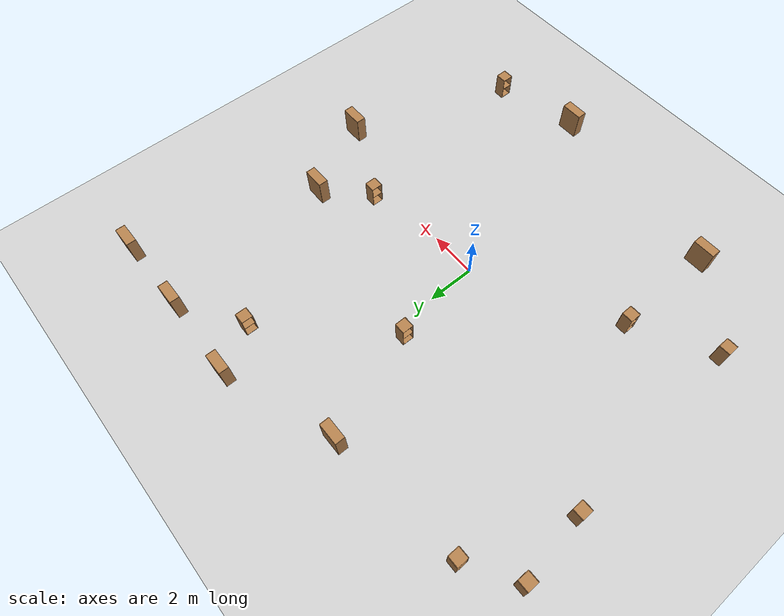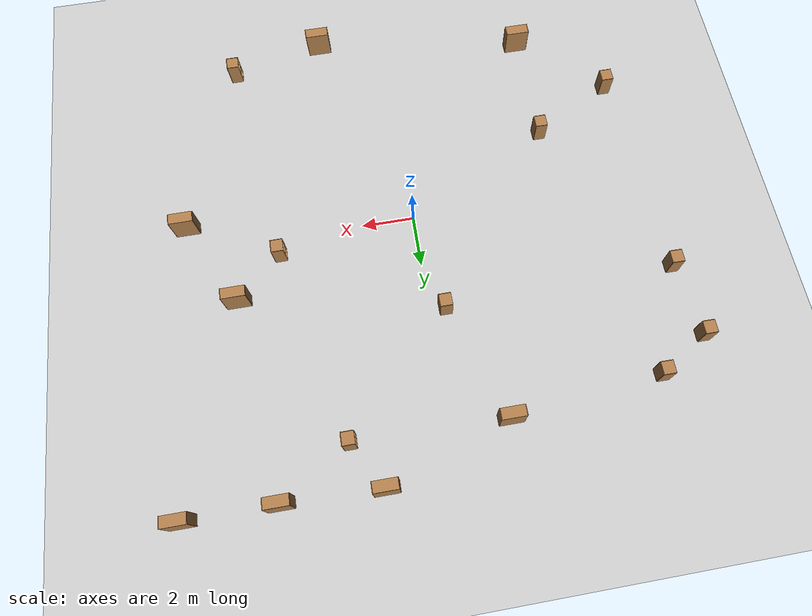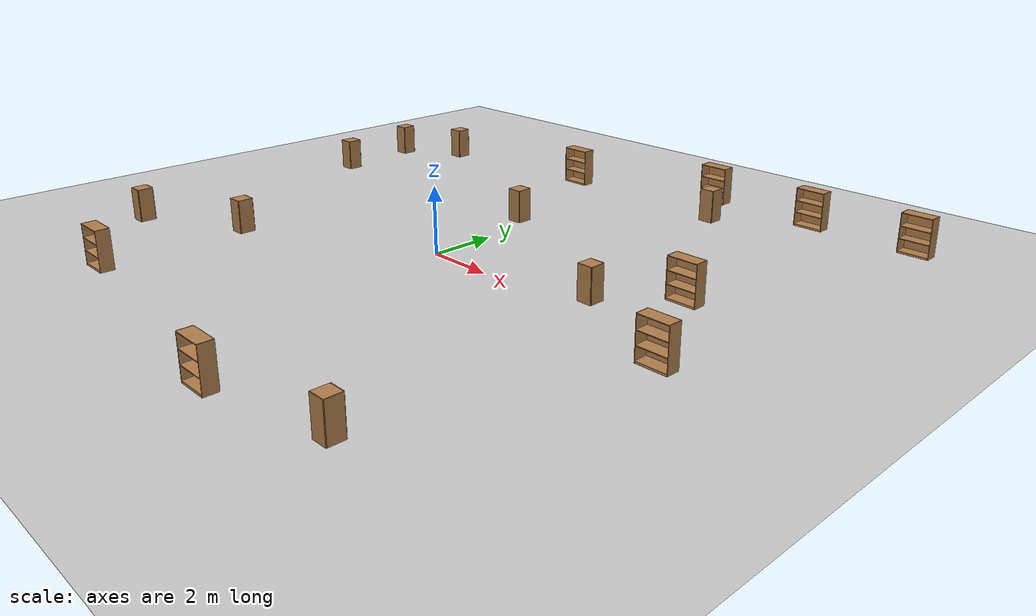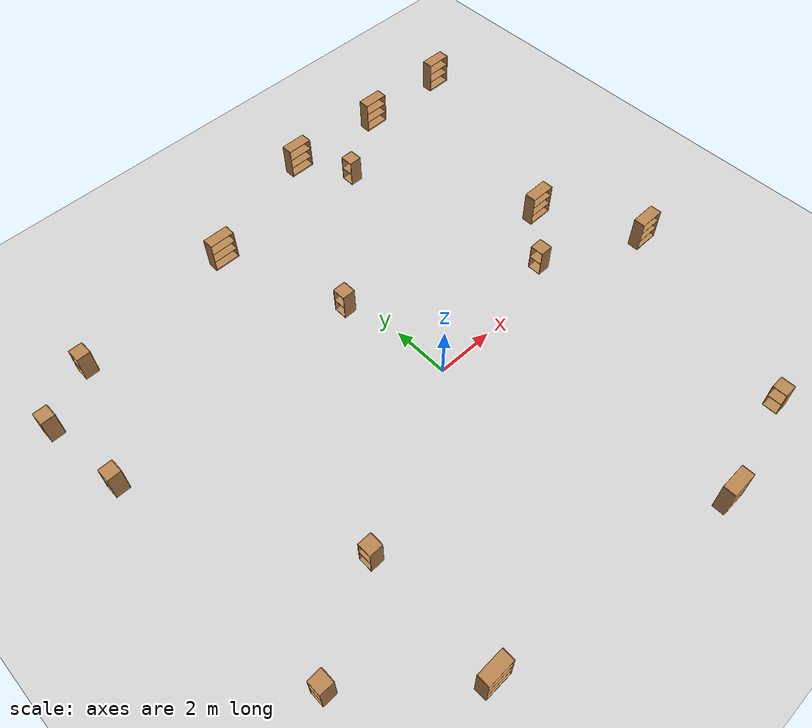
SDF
<sdf version="1.6">
 <world name="default">
  <light name="sun" type="directional">
   <pose>0 0 10 0 -0 0</pose>
   <diffuse>0.8 0.8 0.8 1</diffuse>
   <specular>0.2 0.2 0.2 1</specular>
   <attenuation>
    <range>1000</range>
    <constant>0.9</constant>
    <linear>0.01</linear>
    <quadratic>0.001</quadratic>
   </attenuation>
   <direction>-0.5 0.1 -0.9</direction>
  </light>
  <model name="ground_plane">
   <static>1</static>
   <link name="link">
    <collision name="collision">
     <geometry><plane><normal>0 0 1</normal><size>100 100</size></plane></geometry>
     <surface><friction><ode><mu>100</mu><mu2>50</mu2></ode></friction></surface>
    </collision>
    <visual name="visual">
     <cast_shadows>0</cast_shadows>
     <geometry><plane><normal>0 0 1</normal><size>100 100</size></plane></geometry>
     <material>
      <script><uri>file://media/materials/scripts/gazebo.material</uri><name>Gazebo/Grey</name></script>
     </material>
    </visual>
   </link>
  </model>
  <gravity>0 0 -9.8</gravity>
  <magnetic_field>6e-06 2.3e-05 -4.2e-05</magnetic_field>
  <atmosphere type="adiabatic"/>
  <physics name="default_physics" default="0" type="ode">
   <max_step_size>0.001</max_step_size>
   <real_time_factor>1</real_time_factor>
   <real_time_update_rate>1000</real_time_update_rate>
  </physics>
  <scene><ambient>0.4 0.4 0.4 1</ambient><background>0.7 0.7 0.7 1</background><shadows>1</shadows></scene>
  <audio><device>default</device></audio>
  <spherical_coordinates>
   <surface_model>EARTH_WGS84</surface_model>
   <latitude_deg>0</latitude_deg>
   <longitude_deg>0</longitude_deg>
   <elevation>0</elevation>
   <heading_deg>0</heading_deg>
  </spherical_coordinates>
  <model name="cabinet">
   <static>1</static>
   <link name="cabinet_bottom_plate">
    <inertial>
     <pose>0 0 -1 0 -0 0</pose>
     <inertia><ixx>2.05</ixx><ixy>0</ixy><ixz>0</ixz><iyy>2.05</iyy><iyz>0</iyz><izz>2.05</izz></inertia>
     <mass>25</mass>
    </inertial>
    <collision name="cabinet_bottom_plate_geom">
     <pose>0 0 0.01 0 -0 0</pose>
     <geometry><box><size>0.45 0.45 0.02</size></box></geometry>
    </collision>
    <visual name="cabinet_bottom_plate_geom_visual">
     <pose>0 0 0.01 0 -0 0</pose>
     <geometry><box><size>0.45 0.45 0.02</size></box></geometry>
     <material>
      <script><uri>file://media/materials/scripts/gazebo.material</uri><name>Gazebo/Wood</name></script>
     </material>
    </visual>
    <collision name="cabinet_bottom_plate_geom_cabinet_back_plate">
     <pose>0.235 0 0.51 0 -0 0</pose>
     <geometry><box><size>0.02 0.45 1.02</size></box></geometry>
    </collision>
    <visual name="cabinet_bottom_plate_geom_cabinet_back_plate_visual">
     <pose>0.235 0 0.51 0 -0 0</pose>
     <geometry><box><size>0.02 0.45 1.02</size></box></geometry>
     <material>
      <script><uri>file://media/materials/scripts/gazebo.material</uri><name>Gazebo/Wood</name></script>
     </material>
    </visual>
    <collision name="cabinet_bottom_plate_geom_cabinet_left_plate">
     <pose>0 0.235 0.51 0 -0 0</pose>
     <geometry><box><size>0.45 0.02 1.02</size></box></geometry>
    </collision>
    <visual name="cabinet_bottom_plate_geom_cabinet_left_plate_visual">
     <pose>0 0.235 0.51 0 -0 0</pose>
     <geometry><box><size>0.45 0.02 1.02</size></box></geometry>
     <material>
      <script><uri>file://media/materials/scripts/gazebo.material</uri><name>Gazebo/Wood</name></script>
     </material>
    </visual>
    <collision name="cabinet_bottom_plate_geom_cabinet_middle_plate">
     <pose>0 0 0.51 0 -0 0</pose>
     <geometry><box><size>0.45 0.45 0.02</size></box></geometry>
    </collision>
    <visual name="cabinet_bottom_plate_geom_cabinet_middle_plate_visual">
     <pose>0 0 0.51 0 -0 0</pose>
     <geometry><box><size>0.45 0.45 0.02</size></box></geometry>
     <material>
      <script><uri>file://media/materials/scripts/gazebo.material</uri><name>Gazebo/Wood</name></script>
     </material>
    </visual>
    <collision name="cabinet_bottom_plate_geom_cabinet_right_plate">
     <pose>0 -0.235 0.51 0 -0 0</pose>
     <geometry><box><size>0.45 0.02 1.02</size></box></geometry>
    </collision>
    <visual name="cabinet_bottom_plate_geom_cabinet_right_plate_visual">
     <pose>0 -0.235 0.51 0 -0 0</pose>
     <geometry><box><size>0.45 0.02 1.02</size></box></geometry>
     <material>
      <script><uri>file://media/materials/scripts/gazebo.material</uri><name>Gazebo/Wood</name></script>
     </material>
    </visual>
    <collision name="cabinet_bottom_plate_geom_cabinet_top_plate">
     <pose>0 0 1.01 0 -0 0</pose>
     <geometry><box><size>0.45 0.45 0.02</size></box></geometry>
    </collision>
    <visual name="cabinet_bottom_plate_geom_cabinet_top_plate_visual">
     <pose>0 0 1.01 0 -0 0</pose>
     <geometry><box><size>0.45 0.45 0.02</size></box></geometry>
     <material>
      <script><uri>file://media/materials/scripts/gazebo.material</uri><name>Gazebo/Wood</name></script>
     </material>
    </visual>
   </link>
   <pose>-7.78312 7.62093 0 0 -0 0</pose>
  </model>
  <model name="cabinet_0">
   <static>1</static>
   <link name="cabinet_bottom_plate">
    <inertial>
     <pose>0 0 -1 0 -0 0</pose>
     <inertia><ixx>2.05</ixx><ixy>0</ixy><ixz>0</ixz><iyy>2.05</iyy><iyz>0</iyz><izz>2.05</izz></inertia>
     <mass>25</mass>
    </inertial>
    <collision name="cabinet_bottom_plate_geom">
     <pose>0 0 0.01 0 -0 0</pose>
     <geometry><box><size>0.45 0.45 0.02</size></box></geometry>
    </collision>
    <visual name="cabinet_bottom_plate_geom_visual">
     <pose>0 0 0.01 0 -0 0</pose>
     <geometry><box><size>0.45 0.45 0.02</size></box></geometry>
     <material>
      <script><uri>file://media/materials/scripts/gazebo.material</uri><name>Gazebo/Wood</name></script>
     </material>
    </visual>
    <collision name="cabinet_bottom_plate_geom_cabinet_back_plate">
     <pose>0.235 0 0.51 0 -0 0</pose>
     <geometry><box><size>0.02 0.45 1.02</size></box></geometry>
    </collision>
    <visual name="cabinet_bottom_plate_geom_cabinet_back_plate_visual">
     <pose>0.235 0 0.51 0 -0 0</pose>
     <geometry><box><size>0.02 0.45 1.02</size></box></geometry>
     <material>
      <script><uri>file://media/materials/scripts/gazebo.material</uri><name>Gazebo/Wood</name></script>
     </material>
    </visual>
    <collision name="cabinet_bottom_plate_geom_cabinet_left_plate">
     <pose>0 0.235 0.51 0 -0 0</pose>
     <geometry><box><size>0.45 0.02 1.02</size></box></geometry>
    </collision>
    <visual name="cabinet_bottom_plate_geom_cabinet_left_plate_visual">
     <pose>0 0.235 0.51 0 -0 0</pose>
     <geometry><box><size>0.45 0.02 1.02</size></box></geometry>
     <material>
      <script><uri>file://media/materials/scripts/gazebo.material</uri><name>Gazebo/Wood</name></script>
     </material>
    </visual>
    <collision name="cabinet_bottom_plate_geom_cabinet_middle_plate">
     <pose>0 0 0.51 0 -0 0</pose>
     <geometry><box><size>0.45 0.45 0.02</size></box></geometry>
    </collision>
    <visual name="cabinet_bottom_plate_geom_cabinet_middle_plate_visual">
     <pose>0 0 0.51 0 -0 0</pose>
     <geometry><box><size>0.45 0.45 0.02</size></box></geometry>
     <material>
      <script><uri>file://media/materials/scripts/gazebo.material</uri><name>Gazebo/Wood</name></script>
     </material>
    </visual>
    <collision name="cabinet_bottom_plate_geom_cabinet_right_plate">
     <pose>0 -0.235 0.51 0 -0 0</pose>
     <geometry><box><size>0.45 0.02 1.02</size></box></geometry>
    </collision>
    <visual name="cabinet_bottom_plate_geom_cabinet_right_plate_visual">
     <pose>0 -0.235 0.51 0 -0 0</pose>
     <geometry><box><size>0.45 0.02 1.02</size></box></geometry>
     <material>
      <script><uri>file://media/materials/scripts/gazebo.material</uri><name>Gazebo/Wood</name></script>
     </material>
    </visual>
    <collision name="cabinet_bottom_plate_geom_cabinet_top_plate">
     <pose>0 0 1.01 0 -0 0</pose>
     <geometry><box><size>0.45 0.45 0.02</size></box></geometry>
    </collision>
    <visual name="cabinet_bottom_plate_geom_cabinet_top_plate_visual">
     <pose>0 0 1.01 0 -0 0</pose>
     <geometry><box><size>0.45 0.45 0.02</size></box></geometry>
     <material>
      <script><uri>file://media/materials/scripts/gazebo.material</uri><name>Gazebo/Wood</name></script>
     </material>
    </visual>
   </link>
   <pose>-0.585498 3.84273 0 0 -0 0</pose>
  </model>
  <model name="cabinet_1">
   <static>1</static>
   <link name="cabinet_bottom_plate">
    <inertial>
     <pose>0 0 -1 0 -0 0</pose>
     <inertia><ixx>2.05</ixx><ixy>0</ixy><ixz>0</ixz><iyy>2.05</iyy><iyz>0</iyz><izz>2.05</izz></inertia>
     <mass>25</mass>
    </inertial>
    <collision name="cabinet_bottom_plate_geom">
     <pose>0 0 0.01 0 -0 0</pose>
     <geometry><box><size>0.45 0.45 0.02</size></box></geometry>
    </collision>
    <visual name="cabinet_bottom_plate_geom_visual">
     <pose>0 0 0.01 0 -0 0</pose>
     <geometry><box><size>0.45 0.45 0.02</size></box></geometry>
     <material>
      <script><uri>file://media/materials/scripts/gazebo.material</uri><name>Gazebo/Wood</name></script>
     </material>
    </visual>
    <collision name="cabinet_bottom_plate_geom_cabinet_back_plate">
     <pose>0.235 0 0.51 0 -0 0</pose>
     <geometry><box><size>0.02 0.45 1.02</size></box></geometry>
    </collision>
    <visual name="cabinet_bottom_plate_geom_cabinet_back_plate_visual">
     <pose>0.235 0 0.51 0 -0 0</pose>
     <geometry><box><size>0.02 0.45 1.02</size></box></geometry>
     <material>
      <script><uri>file://media/materials/scripts/gazebo.material</uri><name>Gazebo/Wood</name></script>
     </material>
    </visual>
    <collision name="cabinet_bottom_plate_geom_cabinet_left_plate">
     <pose>0 0.235 0.51 0 -0 0</pose>
     <geometry><box><size>0.45 0.02 1.02</size></box></geometry>
    </collision>
    <visual name="cabinet_bottom_plate_geom_cabinet_left_plate_visual">
     <pose>0 0.235 0.51 0 -0 0</pose>
     <geometry><box><size>0.45 0.02 1.02</size></box></geometry>
     <material>
      <script><uri>file://media/materials/scripts/gazebo.material</uri><name>Gazebo/Wood</name></script>
     </material>
    </visual>
    <collision name="cabinet_bottom_plate_geom_cabinet_middle_plate">
     <pose>0 0 0.51 0 -0 0</pose>
     <geometry><box><size>0.45 0.45 0.02</size></box></geometry>
    </collision>
    <visual name="cabinet_bottom_plate_geom_cabinet_middle_plate_visual">
     <pose>0 0 0.51 0 -0 0</pose>
     <geometry><box><size>0.45 0.45 0.02</size></box></geometry>
     <material>
      <script><uri>file://media/materials/scripts/gazebo.material</uri><name>Gazebo/Wood</name></script>
     </material>
    </visual>
    <collision name="cabinet_bottom_plate_geom_cabinet_right_plate">
     <pose>0 -0.235 0.51 0 -0 0</pose>
     <geometry><box><size>0.45 0.02 1.02</size></box></geometry>
    </collision>
    <visual name="cabinet_bottom_plate_geom_cabinet_right_plate_visual">
     <pose>0 -0.235 0.51 0 -0 0</pose>
     <geometry><box><size>0.45 0.02 1.02</size></box></geometry>
     <material>
      <script><uri>file://media/materials/scripts/gazebo.material</uri><name>Gazebo/Wood</name></script>
     </material>
    </visual>
    <collision name="cabinet_bottom_plate_geom_cabinet_top_plate">
     <pose>0 0 1.01 0 -0 0</pose>
     <geometry><box><size>0.45 0.45 0.02</size></box></geometry>
    </collision>
    <visual name="cabinet_bottom_plate_geom_cabinet_top_plate_visual">
     <pose>0 0 1.01 0 -0 0</pose>
     <geometry><box><size>0.45 0.45 0.02</size></box></geometry>
     <material>
      <script><uri>file://media/materials/scripts/gazebo.material</uri><name>Gazebo/Wood</name></script>
     </material>
    </visual>
   </link>
   <pose>-5.61767 -2.8837 0 0 -0 0</pose>
  </model>
  <model name="cabinet_2">
   <static>1</static>
   <link name="cabinet_bottom_plate">
    <inertial>
     <pose>0 0 -1 0 -0 0</pose>
     <inertia><ixx>2.05</ixx><ixy>0</ixy><ixz>0</ixz><iyy>2.05</iyy><iyz>0</iyz><izz>2.05</izz></inertia>
     <mass>25</mass>
    </inertial>
    <collision name="cabinet_bottom_plate_geom">
     <pose>0 0 0.01 0 -0 0</pose>
     <geometry><box><size>0.45 0.45 0.02</size></box></geometry>
    </collision>
    <visual name="cabinet_bottom_plate_geom_visual">
     <pose>0 0 0.01 0 -0 0</pose>
     <geometry><box><size>0.45 0.45 0.02</size></box></geometry>
     <material>
      <script><uri>file://media/materials/scripts/gazebo.material</uri><name>Gazebo/Wood</name></script>
     </material>
    </visual>
    <collision name="cabinet_bottom_plate_geom_cabinet_back_plate">
     <pose>0.235 0 0.51 0 -0 0</pose>
     <geometry><box><size>0.02 0.45 1.02</size></box></geometry>
    </collision>
    <visual name="cabinet_bottom_plate_geom_cabinet_back_plate_visual">
     <pose>0.235 0 0.51 0 -0 0</pose>
     <geometry><box><size>0.02 0.45 1.02</size></box></geometry>
     <material>
      <script><uri>file://media/materials/scripts/gazebo.material</uri><name>Gazebo/Wood</name></script>
     </material>
    </visual>
    <collision name="cabinet_bottom_plate_geom_cabinet_left_plate">
     <pose>0 0.235 0.51 0 -0 0</pose>
     <geometry><box><size>0.45 0.02 1.02</size></box></geometry>
    </collision>
    <visual name="cabinet_bottom_plate_geom_cabinet_left_plate_visual">
     <pose>0 0.235 0.51 0 -0 0</pose>
     <geometry><box><size>0.45 0.02 1.02</size></box></geometry>
     <material>
      <script><uri>file://media/materials/scripts/gazebo.material</uri><name>Gazebo/Wood</name></script>
     </material>
    </visual>
    <collision name="cabinet_bottom_plate_geom_cabinet_middle_plate">
     <pose>0 0 0.51 0 -0 0</pose>
     <geometry><box><size>0.45 0.45 0.02</size></box></geometry>
    </collision>
    <visual name="cabinet_bottom_plate_geom_cabinet_middle_plate_visual">
     <pose>0 0 0.51 0 -0 0</pose>
     <geometry><box><size>0.45 0.45 0.02</size></box></geometry>
     <material>
      <script><uri>file://media/materials/scripts/gazebo.material</uri><name>Gazebo/Wood</name></script>
     </material>
    </visual>
    <collision name="cabinet_bottom_plate_geom_cabinet_right_plate">
     <pose>0 -0.235 0.51 0 -0 0</pose>
     <geometry><box><size>0.45 0.02 1.02</size></box></geometry>
    </collision>
    <visual name="cabinet_bottom_plate_geom_cabinet_right_plate_visual">
     <pose>0 -0.235 0.51 0 -0 0</pose>
     <geometry><box><size>0.45 0.02 1.02</size></box></geometry>
     <material>
      <script><uri>file://media/materials/scripts/gazebo.material</uri><name>Gazebo/Wood</name></script>
     </material>
    </visual>
    <collision name="cabinet_bottom_plate_geom_cabinet_top_plate">
     <pose>0 0 1.01 0 -0 0</pose>
     <geometry><box><size>0.45 0.45 0.02</size></box></geometry>
    </collision>
    <visual name="cabinet_bottom_plate_geom_cabinet_top_plate_visual">
     <pose>0 0 1.01 0 -0 0</pose>
     <geometry><box><size>0.45 0.45 0.02</size></box></geometry>
     <material>
      <script><uri>file://media/materials/scripts/gazebo.material</uri><name>Gazebo/Wood</name></script>
     </material>
    </visual>
   </link>
   <pose>3.52346 8.11397 0 0 -0 0</pose>
  </model>
  <model name="cabinet_3">
   <static>1</static>
   <link name="cabinet_bottom_plate">
    <inertial>
     <pose>0 0 -1 0 -0 0</pose>
     <inertia><ixx>2.05</ixx><ixy>0</ixy><ixz>0</ixz><iyy>2.05</iyy><iyz>0</iyz><izz>2.05</izz></inertia>
     <mass>25</mass>
    </inertial>
    <collision name="cabinet_bottom_plate_geom">
     <pose>0 0 0.01 0 -0 0</pose>
     <geometry><box><size>0.45 0.45 0.02</size></box></geometry>
    </collision>
    <visual name="cabinet_bottom_plate_geom_visual">
     <pose>0 0 0.01 0 -0 0</pose>
     <geometry><box><size>0.45 0.45 0.02</size></box></geometry>
     <material>
      <script><uri>file://media/materials/scripts/gazebo.material</uri><name>Gazebo/Wood</name></script>
     </material>
    </visual>
    <collision name="cabinet_bottom_plate_geom_cabinet_back_plate">
     <pose>0.235 0 0.51 0 -0 0</pose>
     <geometry><box><size>0.02 0.45 1.02</size></box></geometry>
    </collision>
    <visual name="cabinet_bottom_plate_geom_cabinet_back_plate_visual">
     <pose>0.235 0 0.51 0 -0 0</pose>
     <geometry><box><size>0.02 0.45 1.02</size></box></geometry>
     <material>
      <script><uri>file://media/materials/scripts/gazebo.material</uri><name>Gazebo/Wood</name></script>
     </material>
    </visual>
    <collision name="cabinet_bottom_plate_geom_cabinet_left_plate">
     <pose>0 0.235 0.51 0 -0 0</pose>
     <geometry><box><size>0.45 0.02 1.02</size></box></geometry>
    </collision>
    <visual name="cabinet_bottom_plate_geom_cabinet_left_plate_visual">
     <pose>0 0.235 0.51 0 -0 0</pose>
     <geometry><box><size>0.45 0.02 1.02</size></box></geometry>
     <material>
      <script><uri>file://media/materials/scripts/gazebo.material</uri><name>Gazebo/Wood</name></script>
     </material>
    </visual>
    <collision name="cabinet_bottom_plate_geom_cabinet_middle_plate">
     <pose>0 0 0.51 0 -0 0</pose>
     <geometry><box><size>0.45 0.45 0.02</size></box></geometry>
    </collision>
    <visual name="cabinet_bottom_plate_geom_cabinet_middle_plate_visual">
     <pose>0 0 0.51 0 -0 0</pose>
     <geometry><box><size>0.45 0.45 0.02</size></box></geometry>
     <material>
      <script><uri>file://media/materials/scripts/gazebo.material</uri><name>Gazebo/Wood</name></script>
     </material>
    </visual>
    <collision name="cabinet_bottom_plate_geom_cabinet_right_plate">
     <pose>0 -0.235 0.51 0 -0 0</pose>
     <geometry><box><size>0.45 0.02 1.02</size></box></geometry>
    </collision>
    <visual name="cabinet_bottom_plate_geom_cabinet_right_plate_visual">
     <pose>0 -0.235 0.51 0 -0 0</pose>
     <geometry><box><size>0.45 0.02 1.02</size></box></geometry>
     <material>
      <script><uri>file://media/materials/scripts/gazebo.material</uri><name>Gazebo/Wood</name></script>
     </material>
    </visual>
    <collision name="cabinet_bottom_plate_geom_cabinet_top_plate">
     <pose>0 0 1.01 0 -0 0</pose>
     <geometry><box><size>0.45 0.45 0.02</size></box></geometry>
    </collision>
    <visual name="cabinet_bottom_plate_geom_cabinet_top_plate_visual">
     <pose>0 0 1.01 0 -0 0</pose>
     <geometry><box><size>0.45 0.45 0.02</size></box></geometry>
     <material>
      <script><uri>file://media/materials/scripts/gazebo.material</uri><name>Gazebo/Wood</name></script>
     </material>
    </visual>
   </link>
   <pose>5.21342 0.69056 0 0 -0 0</pose>
  </model>
  <model name="cabinet_4">
   <static>1</static>
   <link name="cabinet_bottom_plate">
    <inertial>
     <pose>0 0 -1 0 -0 0</pose>
     <inertia><ixx>2.05</ixx><ixy>0</ixy><ixz>0</ixz><iyy>2.05</iyy><iyz>0</iyz><izz>2.05</izz></inertia>
     <mass>25</mass>
    </inertial>
    <collision name="cabinet_bottom_plate_geom">
     <pose>0 0 0.01 0 -0 0</pose>
     <geometry><box><size>0.45 0.45 0.02</size></box></geometry>
    </collision>
    <visual name="cabinet_bottom_plate_geom_visual">
     <pose>0 0 0.01 0 -0 0</pose>
     <geometry><box><size>0.45 0.45 0.02</size></box></geometry>
     <material>
      <script><uri>file://media/materials/scripts/gazebo.material</uri><name>Gazebo/Wood</name></script>
     </material>
    </visual>
    <collision name="cabinet_bottom_plate_geom_cabinet_back_plate">
     <pose>0.235 0 0.51 0 -0 0</pose>
     <geometry><box><size>0.02 0.45 1.02</size></box></geometry>
    </collision>
    <visual name="cabinet_bottom_plate_geom_cabinet_back_plate_visual">
     <pose>0.235 0 0.51 0 -0 0</pose>
     <geometry><box><size>0.02 0.45 1.02</size></box></geometry>
     <material>
      <script><uri>file://media/materials/scripts/gazebo.material</uri><name>Gazebo/Wood</name></script>
     </material>
    </visual>
    <collision name="cabinet_bottom_plate_geom_cabinet_left_plate">
     <pose>0 0.235 0.51 0 -0 0</pose>
     <geometry><box><size>0.45 0.02 1.02</size></box></geometry>
    </collision>
    <visual name="cabinet_bottom_plate_geom_cabinet_left_plate_visual">
     <pose>0 0.235 0.51 0 -0 0</pose>
     <geometry><box><size>0.45 0.02 1.02</size></box></geometry>
     <material>
      <script><uri>file://media/materials/scripts/gazebo.material</uri><name>Gazebo/Wood</name></script>
     </material>
    </visual>
    <collision name="cabinet_bottom_plate_geom_cabinet_middle_plate">
     <pose>0 0 0.51 0 -0 0</pose>
     <geometry><box><size>0.45 0.45 0.02</size></box></geometry>
    </collision>
    <visual name="cabinet_bottom_plate_geom_cabinet_middle_plate_visual">
     <pose>0 0 0.51 0 -0 0</pose>
     <geometry><box><size>0.45 0.45 0.02</size></box></geometry>
     <material>
      <script><uri>file://media/materials/scripts/gazebo.material</uri><name>Gazebo/Wood</name></script>
     </material>
    </visual>
    <collision name="cabinet_bottom_plate_geom_cabinet_right_plate">
     <pose>0 -0.235 0.51 0 -0 0</pose>
     <geometry><box><size>0.45 0.02 1.02</size></box></geometry>
    </collision>
    <visual name="cabinet_bottom_plate_geom_cabinet_right_plate_visual">
     <pose>0 -0.235 0.51 0 -0 0</pose>
     <geometry><box><size>0.45 0.02 1.02</size></box></geometry>
     <material>
      <script><uri>file://media/materials/scripts/gazebo.material</uri><name>Gazebo/Wood</name></script>
     </material>
    </visual>
    <collision name="cabinet_bottom_plate_geom_cabinet_top_plate">
     <pose>0 0 1.01 0 -0 0</pose>
     <geometry><box><size>0.45 0.45 0.02</size></box></geometry>
    </collision>
    <visual name="cabinet_bottom_plate_geom_cabinet_top_plate_visual">
     <pose>0 0 1.01 0 -0 0</pose>
     <geometry><box><size>0.45 0.45 0.02</size></box></geometry>
     <material>
      <script><uri>file://media/materials/scripts/gazebo.material</uri><name>Gazebo/Wood</name></script>
     </material>
    </visual>
   </link>
   <pose>-9.28942 3.6387 0 0 -0 0</pose>
  </model>
  <model name="cabinet_5">
   <static>1</static>
   <link name="cabinet_bottom_plate">
    <inertial>
     <pose>0 0 -1 0 -0 0</pose>
     <inertia><ixx>2.05</ixx><ixy>0</ixy><ixz>0</ixz><iyy>2.05</iyy><iyz>0</iyz><izz>2.05</izz></inertia>
     <mass>25</mass>
    </inertial>
    <collision name="cabinet_bottom_plate_geom">
     <pose>0 0 0.01 0 -0 0</pose>
     <geometry><box><size>0.45 0.45 0.02</size></box></geometry>
    </collision>
    <visual name="cabinet_bottom_plate_geom_visual">
     <pose>0 0 0.01 0 -0 0</pose>
     <geometry><box><size>0.45 0.45 0.02</size></box></geometry>
     <material>
      <script><uri>file://media/materials/scripts/gazebo.material</uri><name>Gazebo/Wood</name></script>
     </material>
    </visual>
    <collision name="cabinet_bottom_plate_geom_cabinet_back_plate">
     <pose>0.235 0 0.51 0 -0 0</pose>
     <geometry><box><size>0.02 0.45 1.02</size></box></geometry>
    </collision>
    <visual name="cabinet_bottom_plate_geom_cabinet_back_plate_visual">
     <pose>0.235 0 0.51 0 -0 0</pose>
     <geometry><box><size>0.02 0.45 1.02</size></box></geometry>
     <material>
      <script><uri>file://media/materials/scripts/gazebo.material</uri><name>Gazebo/Wood</name></script>
     </material>
    </visual>
    <collision name="cabinet_bottom_plate_geom_cabinet_left_plate">
     <pose>0 0.235 0.51 0 -0 0</pose>
     <geometry><box><size>0.45 0.02 1.02</size></box></geometry>
    </collision>
    <visual name="cabinet_bottom_plate_geom_cabinet_left_plate_visual">
     <pose>0 0.235 0.51 0 -0 0</pose>
     <geometry><box><size>0.45 0.02 1.02</size></box></geometry>
     <material>
      <script><uri>file://media/materials/scripts/gazebo.material</uri><name>Gazebo/Wood</name></script>
     </material>
    </visual>
    <collision name="cabinet_bottom_plate_geom_cabinet_middle_plate">
     <pose>0 0 0.51 0 -0 0</pose>
     <geometry><box><size>0.45 0.45 0.02</size></box></geometry>
    </collision>
    <visual name="cabinet_bottom_plate_geom_cabinet_middle_plate_visual">
     <pose>0 0 0.51 0 -0 0</pose>
     <geometry><box><size>0.45 0.45 0.02</size></box></geometry>
     <material>
      <script><uri>file://media/materials/scripts/gazebo.material</uri><name>Gazebo/Wood</name></script>
     </material>
    </visual>
    <collision name="cabinet_bottom_plate_geom_cabinet_right_plate">
     <pose>0 -0.235 0.51 0 -0 0</pose>
     <geometry><box><size>0.45 0.02 1.02</size></box></geometry>
    </collision>
    <visual name="cabinet_bottom_plate_geom_cabinet_right_plate_visual">
     <pose>0 -0.235 0.51 0 -0 0</pose>
     <geometry><box><size>0.45 0.02 1.02</size></box></geometry>
     <material>
      <script><uri>file://media/materials/scripts/gazebo.material</uri><name>Gazebo/Wood</name></script>
     </material>
    </visual>
    <collision name="cabinet_bottom_plate_geom_cabinet_top_plate">
     <pose>0 0 1.01 0 -0 0</pose>
     <geometry><box><size>0.45 0.45 0.02</size></box></geometry>
    </collision>
    <visual name="cabinet_bottom_plate_geom_cabinet_top_plate_visual">
     <pose>0 0 1.01 0 -0 0</pose>
     <geometry><box><size>0.45 0.45 0.02</size></box></geometry>
     <material>
      <script><uri>file://media/materials/scripts/gazebo.material</uri><name>Gazebo/Wood</name></script>
     </material>
    </visual>
   </link>
   <pose>-8.74295 -4.55683 0 0 -0 0</pose>
  </model>
  <model name="cabinet_6">
   <static>1</static>
   <link name="cabinet_bottom_plate">
    <inertial>
     <pose>0 0 -1 0 -0 0</pose>
     <inertia><ixx>2.05</ixx><ixy>0</ixy><ixz>0</ixz><iyy>2.05</iyy><iyz>0</iyz><izz>2.05</izz></inertia>
     <mass>25</mass>
    </inertial>
    <collision name="cabinet_bottom_plate_geom">
     <pose>0 0 0.01 0 -0 0</pose>
     <geometry><box><size>0.45 0.45 0.02</size></box></geometry>
    </collision>
    <visual name="cabinet_bottom_plate_geom_visual">
     <pose>0 0 0.01 0 -0 0</pose>
     <geometry><box><size>0.45 0.45 0.02</size></box></geometry>
     <material>
      <script><uri>file://media/materials/scripts/gazebo.material</uri><name>Gazebo/Wood</name></script>
     </material>
    </visual>
    <collision name="cabinet_bottom_plate_geom_cabinet_back_plate">
     <pose>0.235 0 0.51 0 -0 0</pose>
     <geometry><box><size>0.02 0.45 1.02</size></box></geometry>
    </collision>
    <visual name="cabinet_bottom_plate_geom_cabinet_back_plate_visual">
     <pose>0.235 0 0.51 0 -0 0</pose>
     <geometry><box><size>0.02 0.45 1.02</size></box></geometry>
     <material>
      <script><uri>file://media/materials/scripts/gazebo.material</uri><name>Gazebo/Wood</name></script>
     </material>
    </visual>
    <collision name="cabinet_bottom_plate_geom_cabinet_left_plate">
     <pose>0 0.235 0.51 0 -0 0</pose>
     <geometry><box><size>0.45 0.02 1.02</size></box></geometry>
    </collision>
    <visual name="cabinet_bottom_plate_geom_cabinet_left_plate_visual">
     <pose>0 0.235 0.51 0 -0 0</pose>
     <geometry><box><size>0.45 0.02 1.02</size></box></geometry>
     <material>
      <script><uri>file://media/materials/scripts/gazebo.material</uri><name>Gazebo/Wood</name></script>
     </material>
    </visual>
    <collision name="cabinet_bottom_plate_geom_cabinet_middle_plate">
     <pose>0 0 0.51 0 -0 0</pose>
     <geometry><box><size>0.45 0.45 0.02</size></box></geometry>
    </collision>
    <visual name="cabinet_bottom_plate_geom_cabinet_middle_plate_visual">
     <pose>0 0 0.51 0 -0 0</pose>
     <geometry><box><size>0.45 0.45 0.02</size></box></geometry>
     <material>
      <script><uri>file://media/materials/scripts/gazebo.material</uri><name>Gazebo/Wood</name></script>
     </material>
    </visual>
    <collision name="cabinet_bottom_plate_geom_cabinet_right_plate">
     <pose>0 -0.235 0.51 0 -0 0</pose>
     <geometry><box><size>0.45 0.02 1.02</size></box></geometry>
    </collision>
    <visual name="cabinet_bottom_plate_geom_cabinet_right_plate_visual">
     <pose>0 -0.235 0.51 0 -0 0</pose>
     <geometry><box><size>0.45 0.02 1.02</size></box></geometry>
     <material>
      <script><uri>file://media/materials/scripts/gazebo.material</uri><name>Gazebo/Wood</name></script>
     </material>
    </visual>
    <collision name="cabinet_bottom_plate_geom_cabinet_top_plate">
     <pose>0 0 1.01 0 -0 0</pose>
     <geometry><box><size>0.45 0.45 0.02</size></box></geometry>
    </collision>
    <visual name="cabinet_bottom_plate_geom_cabinet_top_plate_visual">
     <pose>0 0 1.01 0 -0 0</pose>
     <geometry><box><size>0.45 0.45 0.02</size></box></geometry>
     <material>
      <script><uri>file://media/materials/scripts/gazebo.material</uri><name>Gazebo/Wood</name></script>
     </material>
    </visual>
   </link>
   <pose>6.23569 -7.74598 0 0 -0 0</pose>
  </model>
  <model name="bookshelf">
   <static>1</static>
   <link name="link">
    <inertial><mass>1</mass></inertial>
    <collision name="back">
     <pose>0 0.005 0.6 0 -0 0</pose>
     <geometry><box><size>0.9 0.01 1.2</size></box></geometry>
    </collision>
    <visual name="visual1">
     <pose>0 0.005 0.6 0 -0 0</pose>
     <geometry><box><size>0.9 0.01 1.2</size></box></geometry>
     <material>
      <script><uri>file://media/materials/scripts/gazebo.material</uri><name>Gazebo/Wood</name></script>
     </material>
    </visual>
    <collision name="left_side">
     <pose>0.45 -0.195 0.6 0 -0 0</pose>
     <geometry><box><size>0.02 0.4 1.2</size></box></geometry>
    </collision>
    <visual name="visual2">
     <pose>0.45 -0.195 0.6 0 -0 0</pose>
     <geometry><box><size>0.02 0.4 1.2</size></box></geometry>
     <material>
      <script><uri>file://media/materials/scripts/gazebo.material</uri><name>Gazebo/Wood</name></script>
     </material>
    </visual>
    <collision name="right_side">
     <pose>-0.45 -0.195 0.6 0 -0 0</pose>
     <geometry><box><size>0.02 0.4 1.2</size></box></geometry>
    </collision>
    <visual name="visual3">
     <pose>-0.45 -0.195 0.6 0 -0 0</pose>
     <geometry><box><size>0.02 0.4 1.2</size></box></geometry>
     <material>
      <script><uri>file://media/materials/scripts/gazebo.material</uri><name>Gazebo/Wood</name></script>
     </material>
    </visual>
    <collision name="bottom">
     <pose>0 -0.195 0.03 0 -0 0</pose>
     <geometry><box><size>0.88 0.4 0.06</size></box></geometry>
    </collision>
    <visual name="visual4">
     <pose>0 -0.195 0.03 0 -0 0</pose>
     <geometry><box><size>0.88 0.4 0.06</size></box></geometry>
     <material>
      <script><uri>file://media/materials/scripts/gazebo.material</uri><name>Gazebo/Wood</name></script>
     </material>
    </visual>
    <collision name="top">
     <pose>0 -0.195 1.19 0 -0 0</pose>
     <geometry><box><size>0.88 0.4 0.02</size></box></geometry>
    </collision>
    <visual name="visual5">
     <pose>0 -0.195 1.19 0 -0 0</pose>
     <geometry><box><size>0.88 0.4 0.02</size></box></geometry>
     <material>
      <script><uri>file://media/materials/scripts/gazebo.material</uri><name>Gazebo/Wood</name></script>
     </material>
    </visual>
    <collision name="low_shelf">
     <pose>0 -0.195 0.43 0 -0 0</pose>
     <geometry><box><size>0.88 0.4 0.02</size></box></geometry>
    </collision>
    <visual name="visual6">
     <pose>0 -0.195 0.43 0 -0 0</pose>
     <geometry><box><size>0.88 0.4 0.02</size></box></geometry>
     <material>
      <script><uri>file://media/materials/scripts/gazebo.material</uri><name>Gazebo/Wood</name></script>
     </material>
    </visual>
    <collision name="high_shelf">
     <pose>0 -0.195 0.8 0 -0 0</pose>
     <geometry><box><size>0.88 0.4 0.02</size></box></geometry>
    </collision>
    <visual name="visual7">
     <pose>0 -0.195 0.8 0 -0 0</pose>
     <geometry><box><size>0.88 0.4 0.02</size></box></geometry>
     <material>
      <script><uri>file://media/materials/scripts/gazebo.material</uri><name>Gazebo/Wood</name></script>
     </material>
    </visual>
   </link>
   <pose>9.37856 9.94846 0 0 -0 0</pose>
  </model>
  <model name="bookshelf_0">
   <static>1</static>
   <link name="link">
    <inertial><mass>1</mass></inertial>
    <collision name="back">
     <pose>0 0.005 0.6 0 -0 0</pose>
     <geometry><box><size>0.9 0.01 1.2</size></box></geometry>
    </collision>
    <visual name="visual1">
     <pose>0 0.005 0.6 0 -0 0</pose>
     <geometry><box><size>0.9 0.01 1.2</size></box></geometry>
     <material>
      <script><uri>file://media/materials/scripts/gazebo.material</uri><name>Gazebo/Wood</name></script>
     </material>
    </visual>
    <collision name="left_side">
     <pose>0.45 -0.195 0.6 0 -0 0</pose>
     <geometry><box><size>0.02 0.4 1.2</size></box></geometry>
    </collision>
    <visual name="visual2">
     <pose>0.45 -0.195 0.6 0 -0 0</pose>
     <geometry><box><size>0.02 0.4 1.2</size></box></geometry>
     <material>
      <script><uri>file://media/materials/scripts/gazebo.material</uri><name>Gazebo/Wood</name></script>
     </material>
    </visual>
    <collision name="right_side">
     <pose>-0.45 -0.195 0.6 0 -0 0</pose>
     <geometry><box><size>0.02 0.4 1.2</size></box></geometry>
    </collision>
    <visual name="visual3">
     <pose>-0.45 -0.195 0.6 0 -0 0</pose>
     <geometry><box><size>0.02 0.4 1.2</size></box></geometry>
     <material>
      <script><uri>file://media/materials/scripts/gazebo.material</uri><name>Gazebo/Wood</name></script>
     </material>
    </visual>
    <collision name="bottom">
     <pose>0 -0.195 0.03 0 -0 0</pose>
     <geometry><box><size>0.88 0.4 0.06</size></box></geometry>
    </collision>
    <visual name="visual4">
     <pose>0 -0.195 0.03 0 -0 0</pose>
     <geometry><box><size>0.88 0.4 0.06</size></box></geometry>
     <material>
      <script><uri>file://media/materials/scripts/gazebo.material</uri><name>Gazebo/Wood</name></script>
     </material>
    </visual>
    <collision name="top">
     <pose>0 -0.195 1.19 0 -0 0</pose>
     <geometry><box><size>0.88 0.4 0.02</size></box></geometry>
    </collision>
    <visual name="visual5">
     <pose>0 -0.195 1.19 0 -0 0</pose>
     <geometry><box><size>0.88 0.4 0.02</size></box></geometry>
     <material>
      <script><uri>file://media/materials/scripts/gazebo.material</uri><name>Gazebo/Wood</name></script>
     </material>
    </visual>
    <collision name="low_shelf">
     <pose>0 -0.195 0.43 0 -0 0</pose>
     <geometry><box><size>0.88 0.4 0.02</size></box></geometry>
    </collision>
    <visual name="visual6">
     <pose>0 -0.195 0.43 0 -0 0</pose>
     <geometry><box><size>0.88 0.4 0.02</size></box></geometry>
     <material>
      <script><uri>file://media/materials/scripts/gazebo.material</uri><name>Gazebo/Wood</name></script>
     </material>
    </visual>
    <collision name="high_shelf">
     <pose>0 -0.195 0.8 0 -0 0</pose>
     <geometry><box><size>0.88 0.4 0.02</size></box></geometry>
    </collision>
    <visual name="visual7">
     <pose>0 -0.195 0.8 0 -0 0</pose>
     <geometry><box><size>0.88 0.4 0.02</size></box></geometry>
     <material>
      <script><uri>file://media/materials/scripts/gazebo.material</uri><name>Gazebo/Wood</name></script>
     </material>
    </visual>
   </link>
   <pose>6.07152 9.94292 0 0 -0 0</pose>
  </model>
  <model name="bookshelf_1">
   <static>1</static>
   <link name="link">
    <inertial><mass>1</mass></inertial>
    <collision name="back">
     <pose>0 0.005 0.6 0 -0 0</pose>
     <geometry><box><size>0.9 0.01 1.2</size></box></geometry>
    </collision>
    <visual name="visual1">
     <pose>0 0.005 0.6 0 -0 0</pose>
     <geometry><box><size>0.9 0.01 1.2</size></box></geometry>
     <material>
      <script><uri>file://media/materials/scripts/gazebo.material</uri><name>Gazebo/Wood</name></script>
     </material>
    </visual>
    <collision name="left_side">
     <pose>0.45 -0.195 0.6 0 -0 0</pose>
     <geometry><box><size>0.02 0.4 1.2</size></box></geometry>
    </collision>
    <visual name="visual2">
     <pose>0.45 -0.195 0.6 0 -0 0</pose>
     <geometry><box><size>0.02 0.4 1.2</size></box></geometry>
     <material>
      <script><uri>file://media/materials/scripts/gazebo.material</uri><name>Gazebo/Wood</name></script>
     </material>
    </visual>
    <collision name="right_side">
     <pose>-0.45 -0.195 0.6 0 -0 0</pose>
     <geometry><box><size>0.02 0.4 1.2</size></box></geometry>
    </collision>
    <visual name="visual3">
     <pose>-0.45 -0.195 0.6 0 -0 0</pose>
     <geometry><box><size>0.02 0.4 1.2</size></box></geometry>
     <material>
      <script><uri>file://media/materials/scripts/gazebo.material</uri><name>Gazebo/Wood</name></script>
     </material>
    </visual>
    <collision name="bottom">
     <pose>0 -0.195 0.03 0 -0 0</pose>
     <geometry><box><size>0.88 0.4 0.06</size></box></geometry>
    </collision>
    <visual name="visual4">
     <pose>0 -0.195 0.03 0 -0 0</pose>
     <geometry><box><size>0.88 0.4 0.06</size></box></geometry>
     <material>
      <script><uri>file://media/materials/scripts/gazebo.material</uri><name>Gazebo/Wood</name></script>
     </material>
    </visual>
    <collision name="top">
     <pose>0 -0.195 1.19 0 -0 0</pose>
     <geometry><box><size>0.88 0.4 0.02</size></box></geometry>
    </collision>
    <visual name="visual5">
     <pose>0 -0.195 1.19 0 -0 0</pose>
     <geometry><box><size>0.88 0.4 0.02</size></box></geometry>
     <material>
      <script><uri>file://media/materials/scripts/gazebo.material</uri><name>Gazebo/Wood</name></script>
     </material>
    </visual>
    <collision name="low_shelf">
     <pose>0 -0.195 0.43 0 -0 0</pose>
     <geometry><box><size>0.88 0.4 0.02</size></box></geometry>
    </collision>
    <visual name="visual6">
     <pose>0 -0.195 0.43 0 -0 0</pose>
     <geometry><box><size>0.88 0.4 0.02</size></box></geometry>
     <material>
      <script><uri>file://media/materials/scripts/gazebo.material</uri><name>Gazebo/Wood</name></script>
     </material>
    </visual>
    <collision name="high_shelf">
     <pose>0 -0.195 0.8 0 -0 0</pose>
     <geometry><box><size>0.88 0.4 0.02</size></box></geometry>
    </collision>
    <visual name="visual7">
     <pose>0 -0.195 0.8 0 -0 0</pose>
     <geometry><box><size>0.88 0.4 0.02</size></box></geometry>
     <material>
      <script><uri>file://media/materials/scripts/gazebo.material</uri><name>Gazebo/Wood</name></script>
     </material>
    </visual>
   </link>
   <pose>6.92756 2.50665 0 0 -0 0</pose>
  </model>
  <model name="bookshelf_2">
   <static>1</static>
   <link name="link">
    <inertial><mass>1</mass></inertial>
    <collision name="back">
     <pose>0 0.005 0.6 0 -0 0</pose>
     <geometry><box><size>0.9 0.01 1.2</size></box></geometry>
    </collision>
    <visual name="visual1">
     <pose>0 0.005 0.6 0 -0 0</pose>
     <geometry><box><size>0.9 0.01 1.2</size></box></geometry>
     <material>
      <script><uri>file://media/materials/scripts/gazebo.material</uri><name>Gazebo/Wood</name></script>
     </material>
    </visual>
    <collision name="left_side">
     <pose>0.45 -0.195 0.6 0 -0 0</pose>
     <geometry><box><size>0.02 0.4 1.2</size></box></geometry>
    </collision>
    <visual name="visual2">
     <pose>0.45 -0.195 0.6 0 -0 0</pose>
     <geometry><box><size>0.02 0.4 1.2</size></box></geometry>
     <material>
      <script><uri>file://media/materials/scripts/gazebo.material</uri><name>Gazebo/Wood</name></script>
     </material>
    </visual>
    <collision name="right_side">
     <pose>-0.45 -0.195 0.6 0 -0 0</pose>
     <geometry><box><size>0.02 0.4 1.2</size></box></geometry>
    </collision>
    <visual name="visual3">
     <pose>-0.45 -0.195 0.6 0 -0 0</pose>
     <geometry><box><size>0.02 0.4 1.2</size></box></geometry>
     <material>
      <script><uri>file://media/materials/scripts/gazebo.material</uri><name>Gazebo/Wood</name></script>
     </material>
    </visual>
    <collision name="bottom">
     <pose>0 -0.195 0.03 0 -0 0</pose>
     <geometry><box><size>0.88 0.4 0.06</size></box></geometry>
    </collision>
    <visual name="visual4">
     <pose>0 -0.195 0.03 0 -0 0</pose>
     <geometry><box><size>0.88 0.4 0.06</size></box></geometry>
     <material>
      <script><uri>file://media/materials/scripts/gazebo.material</uri><name>Gazebo/Wood</name></script>
     </material>
    </visual>
    <collision name="top">
     <pose>0 -0.195 1.19 0 -0 0</pose>
     <geometry><box><size>0.88 0.4 0.02</size></box></geometry>
    </collision>
    <visual name="visual5">
     <pose>0 -0.195 1.19 0 -0 0</pose>
     <geometry><box><size>0.88 0.4 0.02</size></box></geometry>
     <material>
      <script><uri>file://media/materials/scripts/gazebo.material</uri><name>Gazebo/Wood</name></script>
     </material>
    </visual>
    <collision name="low_shelf">
     <pose>0 -0.195 0.43 0 -0 0</pose>
     <geometry><box><size>0.88 0.4 0.02</size></box></geometry>
    </collision>
    <visual name="visual6">
     <pose>0 -0.195 0.43 0 -0 0</pose>
     <geometry><box><size>0.88 0.4 0.02</size></box></geometry>
     <material>
      <script><uri>file://media/materials/scripts/gazebo.material</uri><name>Gazebo/Wood</name></script>
     </material>
    </visual>
    <collision name="high_shelf">
     <pose>0 -0.195 0.8 0 -0 0</pose>
     <geometry><box><size>0.88 0.4 0.02</size></box></geometry>
    </collision>
    <visual name="visual7">
     <pose>0 -0.195 0.8 0 -0 0</pose>
     <geometry><box><size>0.88 0.4 0.02</size></box></geometry>
     <material>
      <script><uri>file://media/materials/scripts/gazebo.material</uri><name>Gazebo/Wood</name></script>
     </material>
    </visual>
   </link>
   <pose>8.64228 -0.775818 0 0 -0 0</pose>
  </model>
  <model name="bookshelf_3">
   <static>1</static>
   <link name="link">
    <inertial><mass>1</mass></inertial>
    <collision name="back">
     <pose>0 0.005 0.6 0 -0 0</pose>
     <geometry><box><size>0.9 0.01 1.2</size></box></geometry>
    </collision>
    <visual name="visual1">
     <pose>0 0.005 0.6 0 -0 0</pose>
     <geometry><box><size>0.9 0.01 1.2</size></box></geometry>
     <material>
      <script><uri>file://media/materials/scripts/gazebo.material</uri><name>Gazebo/Wood</name></script>
     </material>
    </visual>
    <collision name="left_side">
     <pose>0.45 -0.195 0.6 0 -0 0</pose>
     <geometry><box><size>0.02 0.4 1.2</size></box></geometry>
    </collision>
    <visual name="visual2">
     <pose>0.45 -0.195 0.6 0 -0 0</pose>
     <geometry><box><size>0.02 0.4 1.2</size></box></geometry>
     <material>
      <script><uri>file://media/materials/scripts/gazebo.material</uri><name>Gazebo/Wood</name></script>
     </material>
    </visual>
    <collision name="right_side">
     <pose>-0.45 -0.195 0.6 0 -0 0</pose>
     <geometry><box><size>0.02 0.4 1.2</size></box></geometry>
    </collision>
    <visual name="visual3">
     <pose>-0.45 -0.195 0.6 0 -0 0</pose>
     <geometry><box><size>0.02 0.4 1.2</size></box></geometry>
     <material>
      <script><uri>file://media/materials/scripts/gazebo.material</uri><name>Gazebo/Wood</name></script>
     </material>
    </visual>
    <collision name="bottom">
     <pose>0 -0.195 0.03 0 -0 0</pose>
     <geometry><box><size>0.88 0.4 0.06</size></box></geometry>
    </collision>
    <visual name="visual4">
     <pose>0 -0.195 0.03 0 -0 0</pose>
     <geometry><box><size>0.88 0.4 0.06</size></box></geometry>
     <material>
      <script><uri>file://media/materials/scripts/gazebo.material</uri><name>Gazebo/Wood</name></script>
     </material>
    </visual>
    <collision name="top">
     <pose>0 -0.195 1.19 0 -0 0</pose>
     <geometry><box><size>0.88 0.4 0.02</size></box></geometry>
    </collision>
    <visual name="visual5">
     <pose>0 -0.195 1.19 0 -0 0</pose>
     <geometry><box><size>0.88 0.4 0.02</size></box></geometry>
     <material>
      <script><uri>file://media/materials/scripts/gazebo.material</uri><name>Gazebo/Wood</name></script>
     </material>
    </visual>
    <collision name="low_shelf">
     <pose>0 -0.195 0.43 0 -0 0</pose>
     <geometry><box><size>0.88 0.4 0.02</size></box></geometry>
    </collision>
    <visual name="visual6">
     <pose>0 -0.195 0.43 0 -0 0</pose>
     <geometry><box><size>0.88 0.4 0.02</size></box></geometry>
     <material>
      <script><uri>file://media/materials/scripts/gazebo.material</uri><name>Gazebo/Wood</name></script>
     </material>
    </visual>
    <collision name="high_shelf">
     <pose>0 -0.195 0.8 0 -0 0</pose>
     <geometry><box><size>0.88 0.4 0.02</size></box></geometry>
    </collision>
    <visual name="visual7">
     <pose>0 -0.195 0.8 0 -0 0</pose>
     <geometry><box><size>0.88 0.4 0.02</size></box></geometry>
     <material>
      <script><uri>file://media/materials/scripts/gazebo.material</uri><name>Gazebo/Wood</name></script>
     </material>
    </visual>
   </link>
   <pose>-2.1288 8.43733 0 0 -0 0</pose>
  </model>
  <model name="bookshelf_4">
   <static>1</static>
   <link name="link">
    <inertial><mass>1</mass></inertial>
    <collision name="back">
     <pose>0 0.005 0.6 0 -0 0</pose>
     <geometry><box><size>0.9 0.01 1.2</size></box></geometry>
    </collision>
    <visual name="visual1">
     <pose>0 0.005 0.6 0 -0 0</pose>
     <geometry><box><size>0.9 0.01 1.2</size></box></geometry>
     <material>
      <script><uri>file://media/materials/scripts/gazebo.material</uri><name>Gazebo/Wood</name></script>
     </material>
    </visual>
    <collision name="left_side">
     <pose>0.45 -0.195 0.6 0 -0 0</pose>
     <geometry><box><size>0.02 0.4 1.2</size></box></geometry>
    </collision>
    <visual name="visual2">
     <pose>0.45 -0.195 0.6 0 -0 0</pose>
     <geometry><box><size>0.02 0.4 1.2</size></box></geometry>
     <material>
      <script><uri>file://media/materials/scripts/gazebo.material</uri><name>Gazebo/Wood</name></script>
     </material>
    </visual>
    <collision name="right_side">
     <pose>-0.45 -0.195 0.6 0 -0 0</pose>
     <geometry><box><size>0.02 0.4 1.2</size></box></geometry>
    </collision>
    <visual name="visual3">
     <pose>-0.45 -0.195 0.6 0 -0 0</pose>
     <geometry><box><size>0.02 0.4 1.2</size></box></geometry>
     <material>
      <script><uri>file://media/materials/scripts/gazebo.material</uri><name>Gazebo/Wood</name></script>
     </material>
    </visual>
    <collision name="bottom">
     <pose>0 -0.195 0.03 0 -0 0</pose>
     <geometry><box><size>0.88 0.4 0.06</size></box></geometry>
    </collision>
    <visual name="visual4">
     <pose>0 -0.195 0.03 0 -0 0</pose>
     <geometry><box><size>0.88 0.4 0.06</size></box></geometry>
     <material>
      <script><uri>file://media/materials/scripts/gazebo.material</uri><name>Gazebo/Wood</name></script>
     </material>
    </visual>
    <collision name="top">
     <pose>0 -0.195 1.19 0 -0 0</pose>
     <geometry><box><size>0.88 0.4 0.02</size></box></geometry>
    </collision>
    <visual name="visual5">
     <pose>0 -0.195 1.19 0 -0 0</pose>
     <geometry><box><size>0.88 0.4 0.02</size></box></geometry>
     <material>
      <script><uri>file://media/materials/scripts/gazebo.material</uri><name>Gazebo/Wood</name></script>
     </material>
    </visual>
    <collision name="low_shelf">
     <pose>0 -0.195 0.43 0 -0 0</pose>
     <geometry><box><size>0.88 0.4 0.02</size></box></geometry>
    </collision>
    <visual name="visual6">
     <pose>0 -0.195 0.43 0 -0 0</pose>
     <geometry><box><size>0.88 0.4 0.02</size></box></geometry>
     <material>
      <script><uri>file://media/materials/scripts/gazebo.material</uri><name>Gazebo/Wood</name></script>
     </material>
    </visual>
    <collision name="high_shelf">
     <pose>0 -0.195 0.8 0 -0 0</pose>
     <geometry><box><size>0.88 0.4 0.02</size></box></geometry>
    </collision>
    <visual name="visual7">
     <pose>0 -0.195 0.8 0 -0 0</pose>
     <geometry><box><size>0.88 0.4 0.02</size></box></geometry>
     <material>
      <script><uri>file://media/materials/scripts/gazebo.material</uri><name>Gazebo/Wood</name></script>
     </material>
    </visual>
   </link>
   <pose>2.49632 10.0511 0 0 -0 0</pose>
  </model>
  <model name="bookshelf_5">
   <static>1</static>
   <link name="link">
    <inertial><mass>1</mass></inertial>
    <collision name="back">
     <pose>0 0.005 0.6 0 -0 0</pose>
     <geometry><box><size>0.9 0.01 1.2</size></box></geometry>
    </collision>
    <visual name="visual1">
     <pose>0 0.005 0.6 0 -0 0</pose>
     <geometry><box><size>0.9 0.01 1.2</size></box></geometry>
     <material>
      <script><uri>file://media/materials/scripts/gazebo.material</uri><name>Gazebo/Wood</name></script>
     </material>
    </visual>
    <collision name="left_side">
     <pose>0.45 -0.195 0.6 0 -0 0</pose>
     <geometry><box><size>0.02 0.4 1.2</size></box></geometry>
    </collision>
    <visual name="visual2">
     <pose>0.45 -0.195 0.6 0 -0 0</pose>
     <geometry><box><size>0.02 0.4 1.2</size></box></geometry>
     <material>
      <script><uri>file://media/materials/scripts/gazebo.material</uri><name>Gazebo/Wood</name></script>
     </material>
    </visual>
    <collision name="right_side">
     <pose>-0.45 -0.195 0.6 0 -0 0</pose>
     <geometry><box><size>0.02 0.4 1.2</size></box></geometry>
    </collision>
    <visual name="visual3">
     <pose>-0.45 -0.195 0.6 0 -0 0</pose>
     <geometry><box><size>0.02 0.4 1.2</size></box></geometry>
     <material>
      <script><uri>file://media/materials/scripts/gazebo.material</uri><name>Gazebo/Wood</name></script>
     </material>
    </visual>
    <collision name="bottom">
     <pose>0 -0.195 0.03 0 -0 0</pose>
     <geometry><box><size>0.88 0.4 0.06</size></box></geometry>
    </collision>
    <visual name="visual4">
     <pose>0 -0.195 0.03 0 -0 0</pose>
     <geometry><box><size>0.88 0.4 0.06</size></box></geometry>
     <material>
      <script><uri>file://media/materials/scripts/gazebo.material</uri><name>Gazebo/Wood</name></script>
     </material>
    </visual>
    <collision name="top">
     <pose>0 -0.195 1.19 0 -0 0</pose>
     <geometry><box><size>0.88 0.4 0.02</size></box></geometry>
    </collision>
    <visual name="visual5">
     <pose>0 -0.195 1.19 0 -0 0</pose>
     <geometry><box><size>0.88 0.4 0.02</size></box></geometry>
     <material>
      <script><uri>file://media/materials/scripts/gazebo.material</uri><name>Gazebo/Wood</name></script>
     </material>
    </visual>
    <collision name="low_shelf">
     <pose>0 -0.195 0.43 0 -0 0</pose>
     <geometry><box><size>0.88 0.4 0.02</size></box></geometry>
    </collision>
    <visual name="visual6">
     <pose>0 -0.195 0.43 0 -0 0</pose>
     <geometry><box><size>0.88 0.4 0.02</size></box></geometry>
     <material>
      <script><uri>file://media/materials/scripts/gazebo.material</uri><name>Gazebo/Wood</name></script>
     </material>
    </visual>
    <collision name="high_shelf">
     <pose>0 -0.195 0.8 0 -0 0</pose>
     <geometry><box><size>0.88 0.4 0.02</size></box></geometry>
    </collision>
    <visual name="visual7">
     <pose>0 -0.195 0.8 0 -0 0</pose>
     <geometry><box><size>0.88 0.4 0.02</size></box></geometry>
     <material>
      <script><uri>file://media/materials/scripts/gazebo.material</uri><name>Gazebo/Wood</name></script>
     </material>
    </visual>
   </link>
   <pose>2.66031 -8.34535 0 0 -0 0</pose>
  </model>
  <model name="bookshelf_6">
   <static>1</static>
   <link name="link">
    <inertial><mass>1</mass></inertial>
    <collision name="back">
     <pose>0 0.005 0.6 0 -0 0</pose>
     <geometry><box><size>0.9 0.01 1.2</size></box></geometry>
    </collision>
    <visual name="visual1">
     <pose>0 0.005 0.6 0 -0 0</pose>
     <geometry><box><size>0.9 0.01 1.2</size></box></geometry>
     <material>
      <script><uri>file://media/materials/scripts/gazebo.material</uri><name>Gazebo/Wood</name></script>
     </material>
    </visual>
    <collision name="left_side">
     <pose>0.45 -0.195 0.6 0 -0 0</pose>
     <geometry><box><size>0.02 0.4 1.2</size></box></geometry>
    </collision>
    <visual name="visual2">
     <pose>0.45 -0.195 0.6 0 -0 0</pose>
     <geometry><box><size>0.02 0.4 1.2</size></box></geometry>
     <material>
      <script><uri>file://media/materials/scripts/gazebo.material</uri><name>Gazebo/Wood</name></script>
     </material>
    </visual>
    <collision name="right_side">
     <pose>-0.45 -0.195 0.6 0 -0 0</pose>
     <geometry><box><size>0.02 0.4 1.2</size></box></geometry>
    </collision>
    <visual name="visual3">
     <pose>-0.45 -0.195 0.6 0 -0 0</pose>
     <geometry><box><size>0.02 0.4 1.2</size></box></geometry>
     <material>
      <script><uri>file://media/materials/scripts/gazebo.material</uri><name>Gazebo/Wood</name></script>
     </material>
    </visual>
    <collision name="bottom">
     <pose>0 -0.195 0.03 0 -0 0</pose>
     <geometry><box><size>0.88 0.4 0.06</size></box></geometry>
    </collision>
    <visual name="visual4">
     <pose>0 -0.195 0.03 0 -0 0</pose>
     <geometry><box><size>0.88 0.4 0.06</size></box></geometry>
     <material>
      <script><uri>file://media/materials/scripts/gazebo.material</uri><name>Gazebo/Wood</name></script>
     </material>
    </visual>
    <collision name="top">
     <pose>0 -0.195 1.19 0 -0 0</pose>
     <geometry><box><size>0.88 0.4 0.02</size></box></geometry>
    </collision>
    <visual name="visual5">
     <pose>0 -0.195 1.19 0 -0 0</pose>
     <geometry><box><size>0.88 0.4 0.02</size></box></geometry>
     <material>
      <script><uri>file://media/materials/scripts/gazebo.material</uri><name>Gazebo/Wood</name></script>
     </material>
    </visual>
    <collision name="low_shelf">
     <pose>0 -0.195 0.43 0 -0 0</pose>
     <geometry><box><size>0.88 0.4 0.02</size></box></geometry>
    </collision>
    <visual name="visual6">
     <pose>0 -0.195 0.43 0 -0 0</pose>
     <geometry><box><size>0.88 0.4 0.02</size></box></geometry>
     <material>
      <script><uri>file://media/materials/scripts/gazebo.material</uri><name>Gazebo/Wood</name></script>
     </material>
    </visual>
    <collision name="high_shelf">
     <pose>0 -0.195 0.8 0 -0 0</pose>
     <geometry><box><size>0.88 0.4 0.02</size></box></geometry>
    </collision>
    <visual name="visual7">
     <pose>0 -0.195 0.8 0 -0 0</pose>
     <geometry><box><size>0.88 0.4 0.02</size></box></geometry>
     <material>
      <script><uri>file://media/materials/scripts/gazebo.material</uri><name>Gazebo/Wood</name></script>
     </material>
    </visual>
   </link>
   <pose>-5.57208 -7.06733 0 0 -0 0</pose>
  </model>
  <model name="cabinet_7">
   <static>1</static>
   <link name="cabinet_bottom_plate">
    <inertial>
     <pose>0 0 -1 0 -0 0</pose>
     <inertia><ixx>2.05</ixx><ixy>0</ixy><ixz>0</ixz><iyy>2.05</iyy><iyz>0</iyz><izz>2.05</izz></inertia>
     <mass>25</mass>
    </inertial>
    <collision name="cabinet_bottom_plate_geom">
     <pose>0 0 0.01 0 -0 0</pose>
     <geometry><box><size>0.45 0.45 0.02</size></box></geometry>
    </collision>
    <visual name="cabinet_bottom_plate_geom_visual">
     <pose>0 0 0.01 0 -0 0</pose>
     <geometry><box><size>0.45 0.45 0.02</size></box></geometry>
     <material>
      <script><uri>file://media/materials/scripts/gazebo.material</uri><name>Gazebo/Wood</name></script>
     </material>
    </visual>
    <collision name="cabinet_bottom_plate_geom_cabinet_back_plate">
     <pose>0.235 0 0.51 0 -0 0</pose>
     <geometry><box><size>0.02 0.45 1.02</size></box></geometry>
    </collision>
    <visual name="cabinet_bottom_plate_geom_cabinet_back_plate_visual">
     <pose>0.235 0 0.51 0 -0 0</pose>
     <geometry><box><size>0.02 0.45 1.02</size></box></geometry>
     <material>
      <script><uri>file://media/materials/scripts/gazebo.material</uri><name>Gazebo/Wood</name></script>
     </material>
    </visual>
    <collision name="cabinet_bottom_plate_geom_cabinet_left_plate">
     <pose>0 0.235 0.51 0 -0 0</pose>
     <geometry><box><size>0.45 0.02 1.02</size></box></geometry>
    </collision>
    <visual name="cabinet_bottom_plate_geom_cabinet_left_plate_visual">
     <pose>0 0.235 0.51 0 -0 0</pose>
     <geometry><box><size>0.45 0.02 1.02</size></box></geometry>
     <material>
      <script><uri>file://media/materials/scripts/gazebo.material</uri><name>Gazebo/Wood</name></script>
     </material>
    </visual>
    <collision name="cabinet_bottom_plate_geom_cabinet_middle_plate">
     <pose>0 0 0.51 0 -0 0</pose>
     <geometry><box><size>0.45 0.45 0.02</size></box></geometry>
    </collision>
    <visual name="cabinet_bottom_plate_geom_cabinet_middle_plate_visual">
     <pose>0 0 0.51 0 -0 0</pose>
     <geometry><box><size>0.45 0.45 0.02</size></box></geometry>
     <material>
      <script><uri>file://media/materials/scripts/gazebo.material</uri><name>Gazebo/Wood</name></script>
     </material>
    </visual>
    <collision name="cabinet_bottom_plate_geom_cabinet_right_plate">
     <pose>0 -0.235 0.51 0 -0 0</pose>
     <geometry><box><size>0.45 0.02 1.02</size></box></geometry>
    </collision>
    <visual name="cabinet_bottom_plate_geom_cabinet_right_plate_visual">
     <pose>0 -0.235 0.51 0 -0 0</pose>
     <geometry><box><size>0.45 0.02 1.02</size></box></geometry>
     <material>
      <script><uri>file://media/materials/scripts/gazebo.material</uri><name>Gazebo/Wood</name></script>
     </material>
    </visual>
    <collision name="cabinet_bottom_plate_geom_cabinet_top_plate">
     <pose>0 0 1.01 0 -0 0</pose>
     <geometry><box><size>0.45 0.45 0.02</size></box></geometry>
    </collision>
    <visual name="cabinet_bottom_plate_geom_cabinet_top_plate_visual">
     <pose>0 0 1.01 0 -0 0</pose>
     <geometry><box><size>0.45 0.45 0.02</size></box></geometry>
     <material>
      <script><uri>file://media/materials/scripts/gazebo.material</uri><name>Gazebo/Wood</name></script>
     </material>
    </visual>
   </link>
   <pose>-9.66549 6.45006 0 0 -0 0</pose>
  </model>
  <plugin filename="libcollision_map_creator.so" name="collision_map_creator"/>
 </world>
</sdf>
